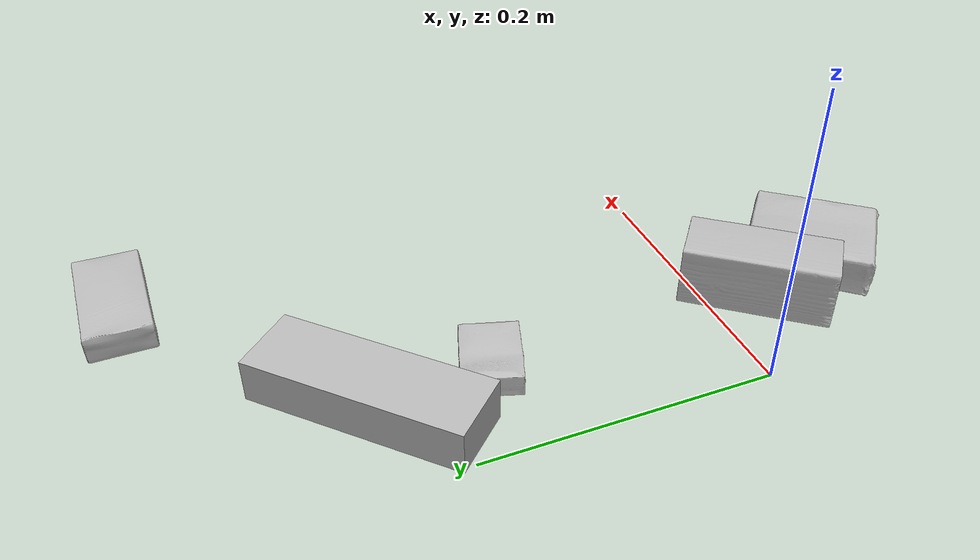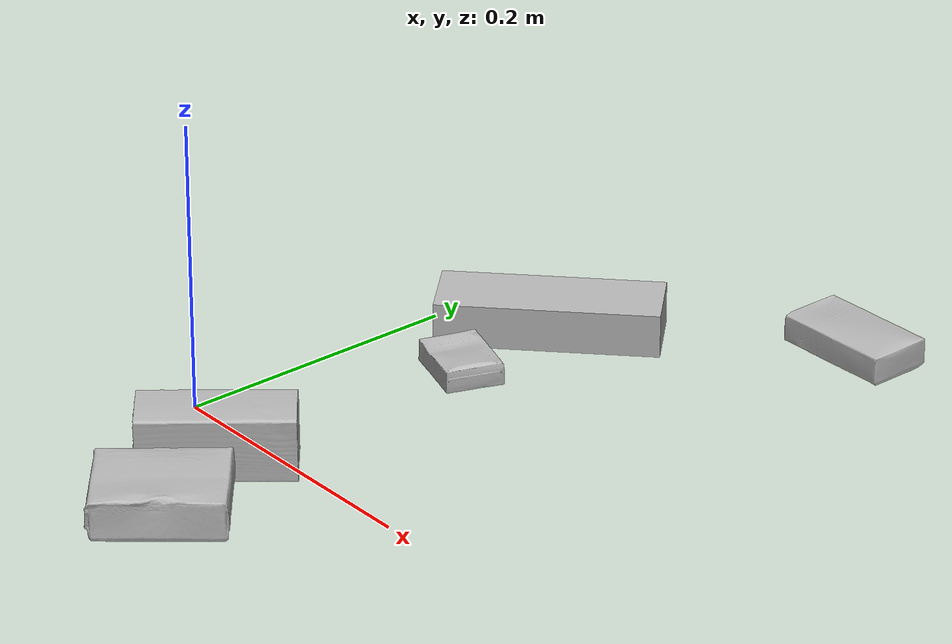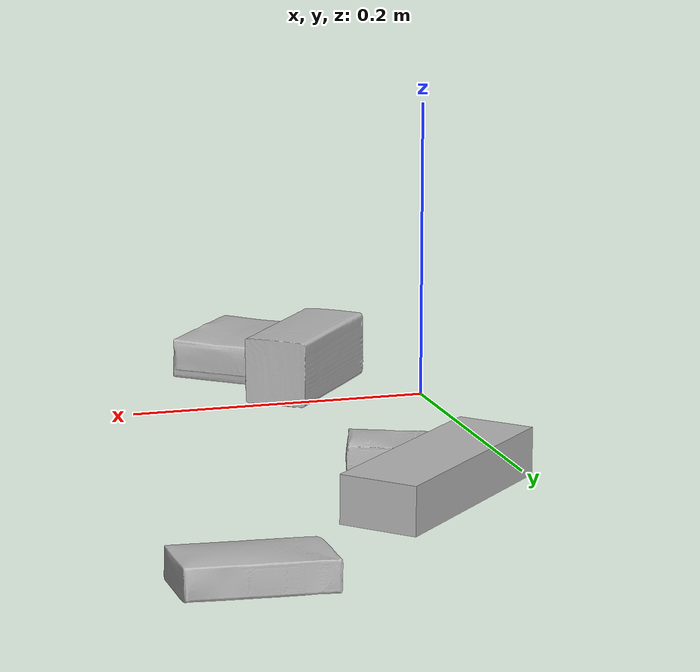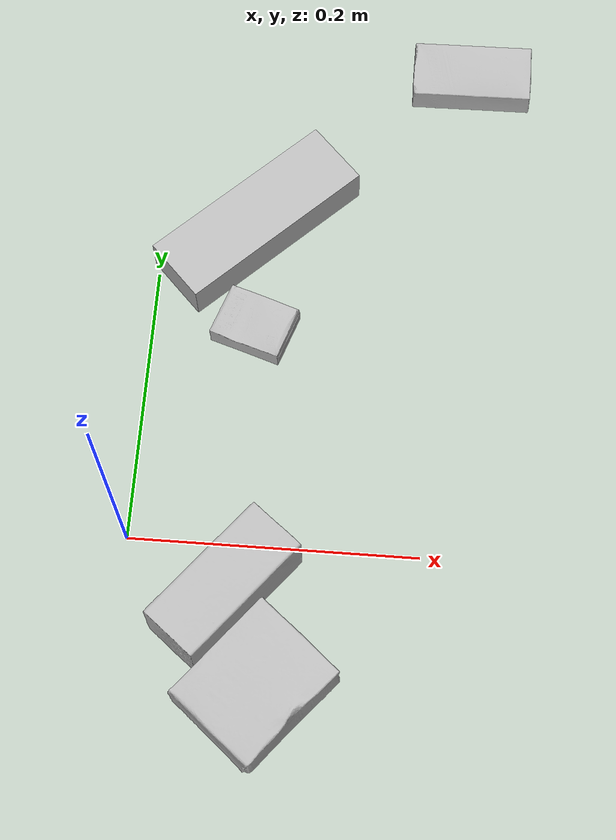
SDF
<sdf version="1.4">
  <world name="default">
    <light name="light1" type="point">
      <pose>0 0 1 0 0 0</pose>
      <diffuse>3 3 3 1</diffuse>
      <specular>3 3 3 1</specular>
    </light>
    <light name="light2" type="point">
      <pose>0 0.5 2 0 0 0</pose>
      <diffuse>1 1 1 1</diffuse>
      <specular>1 1 1 1</specular>
    </light>
    <light name="light3" type="point">
      <pose>0 0.5 2 0 0 0</pose>
      <diffuse>3 3 3 1</diffuse>
      <specular>3 3 3 1</specular>
    </light>
    <scene>
      <ambient>0.7 0.7 0.7</ambient>
    </scene>
    <model name="box1">
      <link name="link_box1">
        <collision name="default">
          <geometry>
            <mesh>
              <uri>model://sugar_box/collision_meshes/collision.obj</uri>
              <scale>0.5 0.5 0.5</scale>
            </mesh>
          </geometry>
          <surface>
            <friction>
              <ode>
                <mu>0.5</mu>
                <mu2>0.5</mu2>
              </ode>
            </friction>
          <contact>
        <ode>
            <max_vel>0</max_vel>
            <min_depth>0.0001</min_depth>
            <kp>1e8</kp>
        </ode>
    </contact></surface>
        </collision>
        <visual name="default">
          <geometry>
            <mesh>
              <uri>model://sugar_box/visual_meshes/visual.dae</uri>
              <scale>0.5 0.5 0.5</scale>
            </mesh>
          </geometry>
        </visual>
        <inertial>
          <mass>0.05016465485095978</mass>
          <pose>0.0005171863595023751 1.924554817378521e-05 -0.0001818240125430748 -0.00040462615463102695 0.0010506635220671036 0.0026153792546614123</pose>
          <inertia>
            <ixx>1.0449262e-05</ixx>
            <iyy>3.3774166e-05</iyy>
            <izz>4.0431696e-05</izz>
            <ixy>0</ixy>
            <ixz>0</ixz>
            <iyz>0</iyz>
          </inertia>
        </inertial>
      </link>
      <pose>0.21774524450302124 0.3767532706260681 0.011399301700294018 0.000775066825937423 -0.023432709530968533 -0.005904905215246612</pose>
    </model>
    <model name="box2">
      <link name="link_box2">
        <collision name="default">
          <geometry>
            <mesh>
              <uri>model://cracker_box/collision_meshes/collision.obj</uri>
              <scale>0.25 0.25 0.25</scale>
            </mesh>
          </geometry>
          <surface>
            <friction>
              <ode>
                <mu>0.5</mu>
                <mu2>0.5</mu2>
              </ode>
            </friction>
          <contact>
        <ode>
            <max_vel>0</max_vel>
            <min_depth>0.0001</min_depth>
            <kp>1e8</kp>
        </ode>
    </contact></surface>
        </collision>
        <visual name="default">
          <geometry>
            <mesh>
              <uri>model://cracker_box/visual_meshes/visual.dae</uri>
              <scale>0.25 0.25 0.25</scale>
            </mesh>
          </geometry>
        </visual>
        <inertial>
          <mass>0.05325852707028389</mass>
          <pose>0.0002366033149883151 6.358561950037256e-05 -0.0004257383698131889 -0.000316207624135088 -0.011106486806293444 0.0025467950014945295</pose>
          <inertia>
            <ixx>8.46662e-06</ixx>
            <iyy>1.3980052e-05</iyy>
            <izz>1.995082e-05</izz>
            <ixy>0</ixy>
            <ixz>0</ixz>
            <iyz>0</iyz>
          </inertia>
        </inertial>
      </link>
      <pose>0.07335738837718964 0.16177086532115936 0.00909603014588356 -0.014051167085120397 -0.005016019057732592 -0.3290526420570458</pose>
    </model>
    <model name="box3">
      <link name="link_box3">
        <collision name="default">
          <geometry>
            <mesh>
              <uri>model://wood_block/collision_meshes/collision.obj</uri>
              <scale>0.5 0.5 0.5</scale>
            </mesh>
          </geometry>
          <surface>
            <friction>
              <ode>
                <mu>0.5</mu>
                <mu2>0.5</mu2>
              </ode>
            </friction>
          <contact>
        <ode>
            <max_vel>0</max_vel>
            <min_depth>0.0001</min_depth>
            <kp>1e8</kp>
        </ode>
    </contact></surface>
        </collision>
        <visual name="default">
          <geometry>
            <mesh>
              <uri>model://wood_block/visual_meshes/visual.dae</uri>
              <scale>0.5 0.5 0.5</scale>
            </mesh>
          </geometry>
        </visual>
        <inertial>
          <mass>0.24977724254131317</mass>
          <pose>-2.9066577553749084e-06 -0.00028540476341731846 0.00013204291462898254 -0.05220975529066727 -0.005192695547513155 -0.006861377927637377</pose>
          <inertia>
            <ixx>8.355995e-05</ixx>
            <iyy>0.00026396586</iyy>
            <izz>0.00026297852</izz>
            <ixy>0</ixy>
            <ixz>0</ixz>
            <iyz>0</iyz>
          </inertia>
        </inertial>
      </link>
      <pose>0.07187625020742416 -0.035495929419994354 0.02262927033007145 -0.005208447607511668 0.005718665018014159 -2.248339888223827</pose>
    </model>
    <model name="box4">
      <link name="link_box4">
        <collision name="default">
          <geometry>
            <mesh>
              <uri>model://gelatin_box/collision_meshes/collision.obj</uri>
              <scale>1.0 1.0 1.0</scale>
            </mesh>
          </geometry>
          <surface>
            <friction>
              <ode>
                <mu>0.5</mu>
                <mu2>0.5</mu2>
              </ode>
            </friction>
          <contact>
        <ode>
            <max_vel>0</max_vel>
            <min_depth>0.0001</min_depth>
            <kp>1e8</kp>
        </ode>
    </contact></surface>
        </collision>
        <visual name="default">
          <geometry>
            <mesh>
              <uri>model://gelatin_box/visual_meshes/visual.dae</uri>
              <scale>1.0 1.0 1.0</scale>
            </mesh>
          </geometry>
        </visual>
        <inertial>
          <mass>0.142814502120018</mass>
          <pose>0.0004319618456065655 0.00011156871187267825 -0.0003640321083366871 -0.0010503719804291966 -0.004755819155973465 0.01644055947187314</pose>
          <inertia>
            <ixx>0.000100815385</ixx>
            <iyy>7.20119e-05</iyy>
            <izz>0.00015346348</izz>
            <ixy>0</ixy>
            <ixz>0</ixz>
            <iyz>0</iyz>
          </inertia>
        </inertial>
      </link>
      <pose>0.09727416932582855 -0.09794348478317261 0.015168314799666405 0.005597467220735048 -0.007304540176625504 -0.7018123818131412</pose>
    </model>
    <model name="box5">
      <link name="link_box5">
        <collision name="default">
          <geometry>
            <mesh>
              <uri>model://jenga/collision_meshes/collision.obj</uri>
              <scale>1.0 1.0 1.0</scale>
            </mesh>
          </geometry>
          <surface>
            <friction>
              <ode>
                <mu>0.5</mu>
                <mu2>0.5</mu2>
              </ode>
            </friction>
          <contact>
        <ode>
            <max_vel>0</max_vel>
            <min_depth>0.0001</min_depth>
            <kp>1e8</kp>
        </ode>
    </contact></surface>
        </collision>
        <visual name="default">
          <geometry>
            <mesh>
              <uri>model://jenga/visual_meshes/visual.dae</uri>
              <scale>1.0 1.0 1.0</scale>
            </mesh>
          </geometry>
        </visual>
        <inertial>
          <mass>0.11303283274173737</mass>
          <pose>-2.502855807051674e-07 -0.00010250010382151231 -4.0923401684267446e-05 0.0 -7.342155186052628e-07 0.0</pose>
          <inertia>
            <ixx>3.127893e-05</ixx>
            <iyy>0.00021194515</iyy>
            <izz>0.00022626946</izz>
            <ixy>0</ixy>
            <ixz>0</ixz>
            <iyz>0</iyz>
          </inertia>
        </inertial>
      </link>
      <pose>0.06809704005718231 0.2421506643295288 0.014999994076788425 1.3196031043339739e-08 -8.621387572622015e-10 -2.378546160226662</pose>
    </model>
  <physics type="ode">
      <max_contacts>50</max_contacts>
      <ode>
        <solver>
          <type>quick</type>
          <iters>75</iters>
        </solver>
        <constraints>
          <contact_max_correcting_vel>0</contact_max_correcting_vel>
          <contact_surface_layer>0</contact_surface_layer>
        </constraints>
      </ode>
    </physics></world>
</sdf>
